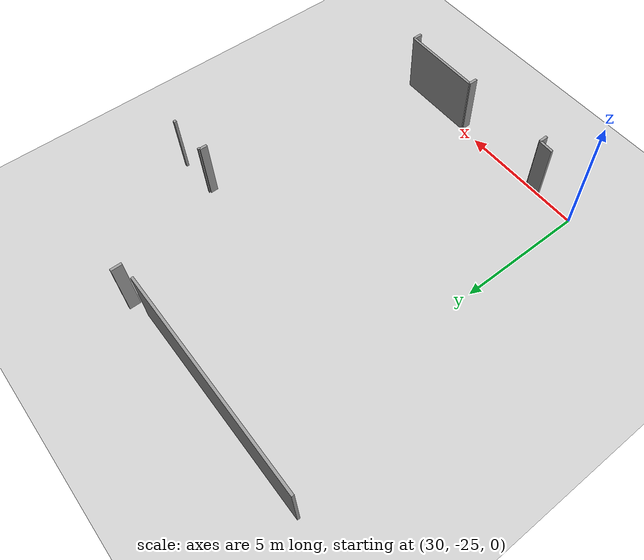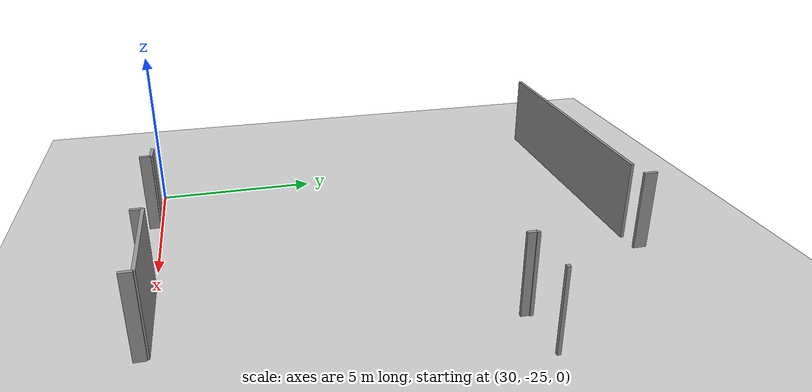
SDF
<sdf version="1.6">
 <world name="default">
  <model name="ground_plane">
   <static>1</static>
   <link name="link">
    <collision name="collision">
     <geometry><plane><normal>0 0 1</normal><size>100 100</size></plane></geometry>
     <surface><friction><ode><mu>100</mu><mu2>50</mu2></ode></friction></surface>
    </collision>
    <visual name="visual">
     <cast_shadows>0</cast_shadows>
     <geometry><plane><normal>0 0 1</normal><size>100 100</size></plane></geometry>
     <material>
      <script><uri>file://media/materials/scripts/gazebo.material</uri><name>Gazebo/Grey</name></script>
     </material>
    </visual>
   </link>
  </model>
  <model name="50045368">
   <static>1</static>
   <link name="Wall_563">
    <collision name="Wall_563_Collision">
     <geometry><box><size>0.290470139771 0.1 2.5</size></box></geometry>
     <pose>0.145235069886 0 1.25 0 0 0</pose>
    </collision>
    <visual name="Wall_563_Visual">
     <pose>0.145235069886 0 1.25 0 0 0</pose>
     <geometry><box><size>0.290470139771 0.1 2.5</size></box></geometry>
     <material>
      <script><uri>file://media/materials/scripts/gazebo.material</uri><name>Gazebo/Grey</name></script>
      <ambient>1 1 1 1</ambient>
     </material>
    </visual>
    <pose>92.1932655654 -41.3005082592 0 0 0 1.57079632679</pose>
   </link>
   <link name="Wall_564">
    <collision name="Wall_564_Collision">
     <geometry><box><size>0.0847522236341 0.1 2.5</size></box></geometry>
     <pose>0.042376111817 0 1.25 0 0 0</pose>
    </collision>
    <visual name="Wall_564_Visual">
     <pose>0.042376111817 0 1.25 0 0 0</pose>
     <geometry><box><size>0.0847522236341 0.1 2.5</size></box></geometry>
     <material>
      <script><uri>file://media/materials/scripts/gazebo.material</uri><name>Gazebo/Grey</name></script>
      <ambient>1 1 1 1</ambient>
     </material>
    </visual>
    <pose>92.1932655654 -41.0100381194 0 0 0 0.0</pose>
   </link>
   <link name="Wall_565">
    <collision name="Wall_565_Collision">
     <geometry><box><size>0.109911054638 0.1 2.5</size></box></geometry>
     <pose>0.0549555273189 0 1.25 0 0 0</pose>
    </collision>
    <visual name="Wall_565_Visual">
     <pose>0.0549555273189 0 1.25 0 0 0</pose>
     <geometry><box><size>0.109911054638 0.1 2.5</size></box></geometry>
     <material>
      <script><uri>file://media/materials/scripts/gazebo.material</uri><name>Gazebo/Grey</name></script>
      <ambient>1 1 1 1</ambient>
     </material>
    </visual>
    <pose>93.8202033037 -41.0100381194 0 0 0 0.0</pose>
   </link>
   <link name="Wall_571">
    <collision name="Wall_571_Collision">
     <geometry><box><size>0.344726810673 0.1 2.5</size></box></geometry>
     <pose>0.172363405337 0 1.25 0 0 0</pose>
    </collision>
    <visual name="Wall_571_Visual">
     <pose>0.172363405337 0 1.25 0 0 0</pose>
     <geometry><box><size>0.344726810673 0.1 2.5</size></box></geometry>
     <material>
      <script><uri>file://media/materials/scripts/gazebo.material</uri><name>Gazebo/Grey</name></script>
      <ambient>1 1 1 1</ambient>
     </material>
    </visual>
    <pose>91.7875476493 -51.0292249047 0 0 0 1.57079632679</pose>
   </link>
   <link name="Wall_572">
    <collision name="Wall_572_Collision">
     <geometry><box><size>3.17471410419 0.1 2.5</size></box></geometry>
     <pose>1.5873570521 0 1.25 0 0 0</pose>
    </collision>
    <visual name="Wall_572_Visual">
     <pose>1.5873570521 0 1.25 0 0 0</pose>
     <geometry><box><size>3.17471410419 0.1 2.5</size></box></geometry>
     <material>
      <script><uri>file://media/materials/scripts/gazebo.material</uri><name>Gazebo/Grey</name></script>
      <ambient>1 1 1 1</ambient>
     </material>
    </visual>
    <pose>91.7875476493 -50.684498094 0 0 0 3.14159265359</pose>
   </link>
   <link name="Wall_573">
    <collision name="Wall_573_Collision">
     <geometry><box><size>0.341296060991 0.1 2.5</size></box></geometry>
     <pose>0.170648030496 0 1.25 0 0 0</pose>
    </collision>
    <visual name="Wall_573_Visual">
     <pose>0.170648030496 0 1.25 0 0 0</pose>
     <geometry><box><size>0.341296060991 0.1 2.5</size></box></geometry>
     <material>
      <script><uri>file://media/materials/scripts/gazebo.material</uri><name>Gazebo/Grey</name></script>
      <ambient>1 1 1 1</ambient>
     </material>
    </visual>
    <pose>88.6128335451 -50.684498094 0 0 0 -1.57079632679</pose>
   </link>
   <link name="Wall_574">
    <collision name="Wall_574_Collision">
     <geometry><box><size>0.341931385006 0.1 2.5</size></box></geometry>
     <pose>0.170965692503 0 1.25 0 0 0</pose>
    </collision>
    <visual name="Wall_574_Visual">
     <pose>0.170965692503 0 1.25 0 0 0</pose>
     <geometry><box><size>0.341931385006 0.1 2.5</size></box></geometry>
     <material>
      <script><uri>file://media/materials/scripts/gazebo.material</uri><name>Gazebo/Grey</name></script>
      <ambient>1 1 1 1</ambient>
     </material>
    </visual>
    <pose>84.9679796696 -51.025794155 0 0 0 1.57079632679</pose>
   </link>
   <link name="Wall_575">
    <collision name="Wall_575_Collision">
     <geometry><box><size>0.598588369484 0.1 2.5</size></box></geometry>
     <pose>0.299294184742 0 1.25 0 0 0</pose>
    </collision>
    <visual name="Wall_575_Visual">
     <pose>0.299294184742 0 1.25 0 0 0</pose>
     <geometry><box><size>0.598588369484 0.1 2.5</size></box></geometry>
     <material>
      <script><uri>file://media/materials/scripts/gazebo.material</uri><name>Gazebo/Grey</name></script>
      <ambient>1 1 1 1</ambient>
     </material>
    </visual>
    <pose>84.9679796696 -50.68386277 0 0 0 3.10656026304</pose>
   </link>
   <link name="Wall_610">
    <collision name="Wall_610_Collision">
     <geometry><box><size>0.419440914867 0.1 2.5</size></box></geometry>
     <pose>0.209720457433 0 1.25 0 0 0</pose>
    </collision>
    <visual name="Wall_610_Visual">
     <pose>0.209720457433 0 1.25 0 0 0</pose>
     <geometry><box><size>0.419440914867 0.1 2.5</size></box></geometry>
     <material>
      <script><uri>file://media/materials/scripts/gazebo.material</uri><name>Gazebo/Grey</name></script>
      <ambient>1 1 1 1</ambient>
     </material>
    </visual>
    <pose>89.684498094 -36.5415501906 0 0 0 1.57079632679</pose>
   </link>
   <link name="Wall_615">
    <collision name="Wall_615_Collision">
     <geometry><box><size>8.63977128335 0.1 2.5</size></box></geometry>
     <pose>4.31988564168 0 1.25 0 0 0</pose>
    </collision>
    <visual name="Wall_615_Visual">
     <pose>4.31988564168 0 1.25 0 0 0</pose>
     <geometry><box><size>8.63977128335 0.1 2.5</size></box></geometry>
     <material>
      <script><uri>file://media/materials/scripts/gazebo.material</uri><name>Gazebo/Grey</name></script>
      <ambient>1 1 1 1</ambient>
     </material>
    </visual>
    <pose>89.0364675985 -36.5372299873 0 0 0 3.14159265359</pose>
   </link>
   <pose>-52.8 25.6383100381 0 0 0 0</pose>
  </model>
 </world>
</sdf>
